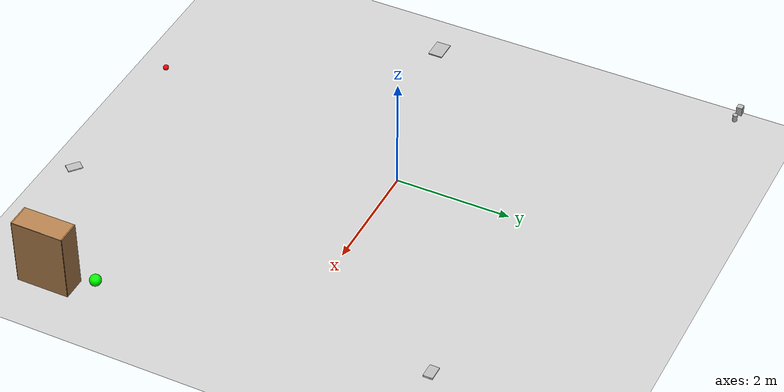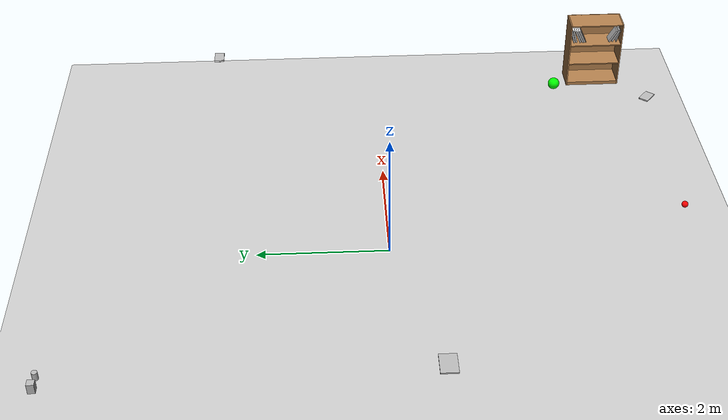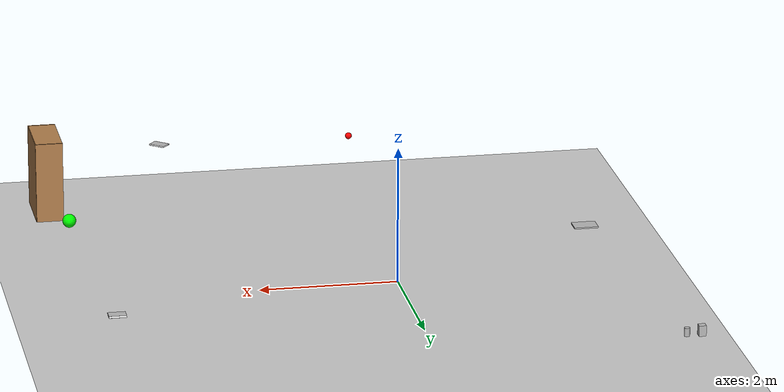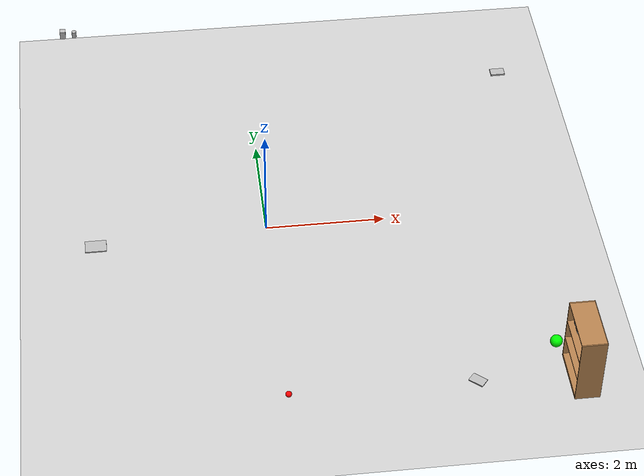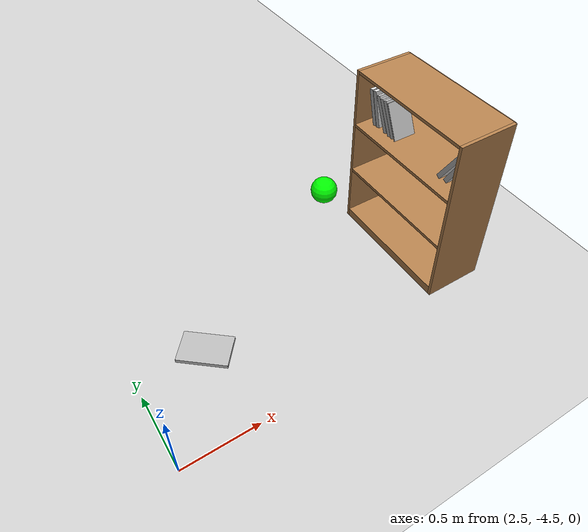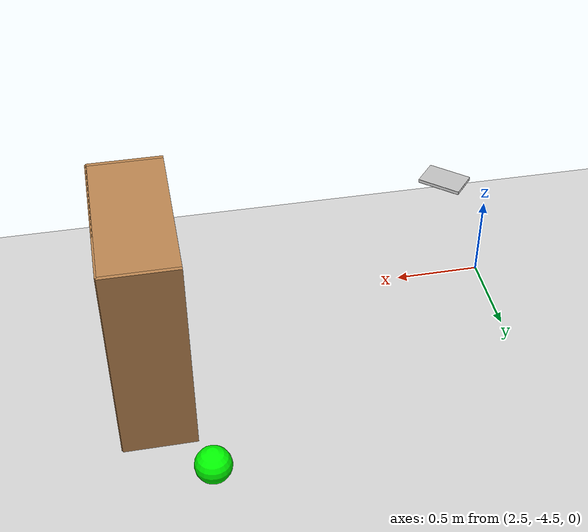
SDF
<sdf version="1.7">
 <world name="default">
  <light name="sun" type="directional">
   <pose>0 0 10 0 -0 0</pose>
   <diffuse>0.8 0.8 0.8 1</diffuse>
   <specular>0.1 0.1 0.1 1</specular>
   <attenuation>
    <range>1000</range>
    <constant>0.9</constant>
    <linear>0.01</linear>
    <quadratic>0.001</quadratic>
   </attenuation>
   <direction>-0.5 0.5 -1</direction>
   <spot><inner_angle>0</inner_angle><outer_angle>0</outer_angle><falloff>0</falloff></spot>
  </light>
  <model name="ground_plane">
   <static>1</static>
   <link name="link">
    <collision name="collision">
     <geometry><plane><normal>0 0 1</normal><size>100 100</size></plane></geometry>
     <surface><friction><ode><mu>100</mu><mu2>50</mu2></ode></friction></surface>
    </collision>
    <visual name="visual">
     <cast_shadows>0</cast_shadows>
     <geometry><plane><normal>0 0 1</normal><size>100 100</size></plane></geometry>
     <material>
      <script><uri>file://media/materials/scripts/gazebo.material</uri><name>Gazebo/Grey</name></script>
     </material>
    </visual>
   </link>
  </model>
  <gravity>0 0 -9.8</gravity>
  <magnetic_field>6e-06 2.3e-05 -4.2e-05</magnetic_field>
  <atmosphere type="adiabatic"/>
  <physics name="default_physics" default="0" type="ode">
   <max_step_size>0.001</max_step_size>
   <real_time_factor>1</real_time_factor>
   <real_time_update_rate>1000</real_time_update_rate>
  </physics>
  <scene><ambient>0.4 0.4 0.4 1</ambient><background>0.7 0.7 0.7 1</background><shadows>1</shadows></scene>
  <spherical_coordinates>
   <surface_model>EARTH_WGS84</surface_model>
   <latitude_deg>0</latitude_deg>
   <longitude_deg>0</longitude_deg>
   <elevation>0</elevation>
   <heading_deg>0</heading_deg>
  </spherical_coordinates>
  <model name="bookshelf">
   <static>1</static>
   <link name="link">
    <inertial><mass>1</mass></inertial>
    <collision name="back">
     <pose>0 0.005 0.6 0 -0 0</pose>
     <geometry><box><size>0.9 0.01 1.2</size></box></geometry>
    </collision>
    <visual name="visual1">
     <pose>0 0.005 0.6 0 -0 0</pose>
     <geometry><box><size>0.9 0.01 1.2</size></box></geometry>
     <material>
      <script><uri>file://media/materials/scripts/gazebo.material</uri><name>Gazebo/Wood</name></script>
     </material>
    </visual>
    <collision name="left_side">
     <pose>0.45 -0.195 0.6 0 -0 0</pose>
     <geometry><box><size>0.02 0.4 1.2</size></box></geometry>
    </collision>
    <visual name="visual2">
     <pose>0.45 -0.195 0.6 0 -0 0</pose>
     <geometry><box><size>0.02 0.4 1.2</size></box></geometry>
     <material>
      <script><uri>file://media/materials/scripts/gazebo.material</uri><name>Gazebo/Wood</name></script>
     </material>
    </visual>
    <collision name="right_side">
     <pose>-0.45 -0.195 0.6 0 -0 0</pose>
     <geometry><box><size>0.02 0.4 1.2</size></box></geometry>
    </collision>
    <visual name="visual3">
     <pose>-0.45 -0.195 0.6 0 -0 0</pose>
     <geometry><box><size>0.02 0.4 1.2</size></box></geometry>
     <material>
      <script><uri>file://media/materials/scripts/gazebo.material</uri><name>Gazebo/Wood</name></script>
     </material>
    </visual>
    <collision name="bottom">
     <pose>0 -0.195 0.03 0 -0 0</pose>
     <geometry><box><size>0.88 0.4 0.06</size></box></geometry>
    </collision>
    <visual name="visual4">
     <pose>0 -0.195 0.03 0 -0 0</pose>
     <geometry><box><size>0.88 0.4 0.06</size></box></geometry>
     <material>
      <script><uri>file://media/materials/scripts/gazebo.material</uri><name>Gazebo/Wood</name></script>
     </material>
    </visual>
    <collision name="top">
     <pose>0 -0.195 1.19 0 -0 0</pose>
     <geometry><box><size>0.88 0.4 0.02</size></box></geometry>
    </collision>
    <visual name="visual5">
     <pose>0 -0.195 1.19 0 -0 0</pose>
     <geometry><box><size>0.88 0.4 0.02</size></box></geometry>
     <material>
      <script><uri>file://media/materials/scripts/gazebo.material</uri><name>Gazebo/Wood</name></script>
     </material>
    </visual>
    <collision name="low_shelf">
     <pose>0 -0.195 0.43 0 -0 0</pose>
     <geometry><box><size>0.88 0.4 0.02</size></box></geometry>
    </collision>
    <visual name="visual6">
     <pose>0 -0.195 0.43 0 -0 0</pose>
     <geometry><box><size>0.88 0.4 0.02</size></box></geometry>
     <material>
      <script><uri>file://media/materials/scripts/gazebo.material</uri><name>Gazebo/Wood</name></script>
     </material>
    </visual>
    <collision name="high_shelf">
     <pose>0 -0.195 0.8 0 -0 0</pose>
     <geometry><box><size>0.88 0.4 0.02</size></box></geometry>
    </collision>
    <visual name="visual7">
     <pose>0 -0.195 0.8 0 -0 0</pose>
     <geometry><box><size>0.88 0.4 0.02</size></box></geometry>
     <material>
      <script><uri>file://media/materials/scripts/gazebo.material</uri><name>Gazebo/Wood</name></script>
     </material>
    </visual>
   </link>
   <pose>4.75971 -3.85961 0.022492 0 0 -1.57</pose>
  </model>
  <model name="book_10">
   <link name="cover">
    <pose>0 -0.000108 0.015405 0 -0 0</pose>
    <visual name="visual">
     <geometry><box><size>0.245 0.16 0.03</size></box></geometry>
     <material>
      <script>
       <uri>model://book_10/materials/scripts</uri>
       <uri>model://book_10/materials/textures</uri>
       <name>book_10</name>
      </script>
     </material>
    </visual>
    <collision name="collision"><geometry><box><size>0.245 0.16 0.03</size></box></geometry></collision>
   </link>
   <link name="page">
    <pose>0 0.000608 0.015405 0 -0 0</pose>
    <visual name="visual">
     <geometry><box><size>0.24502 0.15862 0.028</size></box></geometry>
     <material>
      <lighting>1</lighting>
      <ambient>1 1 1 1</ambient>
      <diffuse>1 1 1 1</diffuse>
      <specular>0.01 0.01 0.01 1</specular>
      <emissive>0 0 0 1</emissive>
      <shader type="vertex"><normal_map>__default__</normal_map></shader>
     </material>
    </visual>
    <collision name="collision"><geometry><box><size>0.245 0.16 0.03</size></box></geometry></collision>
   </link>
   <static>1</static>
   <pose>4.53805 -3.48289 0.958324 3.13855 -1.30602 1.57134</pose>
  </model>
  <model name="book_1">
   <link name="cover">
    <pose>0 -0.000108 0.015405 0 -0 0</pose>
    <visual name="visual">
     <geometry><box><size>0.245 0.16 0.03</size></box></geometry>
     <material>
      <script>
       <uri>model://book_1/materials/scripts</uri>
       <uri>model://book_1/materials/textures</uri>
       <name>book_1</name>
      </script>
     </material>
    </visual>
    <collision name="collision"><geometry><box><size>0.245 0.16 0.03</size></box></geometry></collision>
   </link>
   <link name="page">
    <pose>0 0.000608 0.015405 0 -0 0</pose>
    <visual name="visual">
     <geometry><box><size>0.24502 0.15862 0.028</size></box></geometry>
     <material>
      <lighting>1</lighting>
      <ambient>1 1 1 1</ambient>
      <diffuse>1 1 1 1</diffuse>
      <specular>0.01 0.01 0.01 1</specular>
      <emissive>0 0 0 1</emissive>
      <shader type="vertex"><normal_map>__default__</normal_map></shader>
     </material>
    </visual>
    <collision name="collision"><geometry><box><size>0.245 0.16 0.03</size></box></geometry></collision>
   </link>
   <static>1</static>
   <pose>4.53796 -3.57288 0.95783 3.13964 -1.15052 1.57019</pose>
  </model>
  <model name="book_12">
   <link name="cover">
    <pose>0 -0.000108 0.015405 0 -0 0</pose>
    <visual name="visual">
     <geometry><box><size>0.245 0.16 0.03</size></box></geometry>
     <material>
      <script>
       <uri>model://book_12/materials/scripts</uri>
       <uri>model://book_12/materials/textures</uri>
       <name>book_12</name>
      </script>
     </material>
    </visual>
    <collision name="collision"><geometry><box><size>0.245 0.16 0.03</size></box></geometry></collision>
   </link>
   <link name="page">
    <pose>0 0.000608 0.015405 0 -0 0</pose>
    <visual name="visual">
     <geometry><box><size>0.24502 0.15862 0.028</size></box></geometry>
     <material>
      <lighting>1</lighting>
      <ambient>1 1 1 1</ambient>
      <diffuse>1 1 1 1</diffuse>
      <specular>0.01 0.01 0.01 1</specular>
      <emissive>0 0 0 1</emissive>
      <shader type="vertex"><normal_map>__default__</normal_map></shader>
     </material>
    </visual>
    <collision name="collision"><geometry><box><size>0.245 0.16 0.03</size></box></geometry></collision>
   </link>
   <static>1</static>
   <pose>4.53794 -3.60986 0.955818 3.13975 -1.123 1.57007</pose>
  </model>
  <model name="book_14">
   <link name="cover">
    <pose>0 -0.000108 0.015405 0 -0 0</pose>
    <visual name="visual">
     <geometry><box><size>0.245 0.16 0.03</size></box></geometry>
     <material>
      <script>
       <uri>model://book_14/materials/scripts</uri>
       <uri>model://book_14/materials/textures</uri>
       <name>book_14</name>
      </script>
     </material>
    </visual>
    <collision name="collision"><geometry><box><size>0.245 0.16 0.03</size></box></geometry></collision>
   </link>
   <link name="page">
    <pose>0 0.000608 0.015405 0 -0 0</pose>
    <visual name="visual">
     <geometry><box><size>0.24502 0.15862 0.028</size></box></geometry>
     <material>
      <lighting>1</lighting>
      <ambient>1 1 1 1</ambient>
      <diffuse>1 1 1 1</diffuse>
      <specular>0.01 0.01 0.01 1</specular>
      <emissive>0 0 0 1</emissive>
      <shader type="vertex"><normal_map>__default__</normal_map></shader>
     </material>
    </visual>
    <collision name="collision"><geometry><box><size>0.245 0.16 0.03</size></box></geometry></collision>
   </link>
   <static>1</static>
   <pose>4.53795 -3.51692 0.962229 3.13848 -1.31226 1.57142</pose>
  </model>
  <model name="book_17">
   <link name="cover">
    <pose>0 -0.000108 0.015405 0 -0 0</pose>
    <visual name="visual">
     <geometry><box><size>0.245 0.16 0.03</size></box></geometry>
     <material>
      <script>
       <uri>model://book_17/materials/scripts</uri>
       <uri>model://book_17/materials/textures</uri>
       <name>book_17</name>
      </script>
     </material>
    </visual>
    <collision name="collision"><geometry><box><size>0.245 0.16 0.03</size></box></geometry></collision>
   </link>
   <link name="page">
    <pose>0 0.000608 0.015405 0 -0 0</pose>
    <visual name="visual">
     <geometry><box><size>0.24502 0.15862 0.028</size></box></geometry>
     <material>
      <lighting>1</lighting>
      <ambient>1 1 1 1</ambient>
      <diffuse>1 1 1 1</diffuse>
      <specular>0.01 0.01 0.01 1</specular>
      <emissive>0 0 0 1</emissive>
      <shader type="vertex"><normal_map>__default__</normal_map></shader>
     </material>
    </visual>
    <collision name="collision"><geometry><box><size>0.245 0.16 0.03</size></box></geometry></collision>
   </link>
   <static>1</static>
   <pose>4.53801 -3.64141 0.957888 3.13972 -1.13115 1.5701</pose>
  </model>
  <model name="book_8">
   <link name="cover">
    <pose>0 -0.000108 0.005 0 -0 0</pose>
    <visual name="visual">
     <geometry><box><size>0.245 0.16 0.01</size></box></geometry>
     <material>
      <script>
       <uri>model://book_8/materials/scripts</uri>
       <uri>model://book_8/materials/textures</uri>
       <name>book_8</name>
      </script>
     </material>
    </visual>
    <collision name="collision"><geometry><box><size>0.245 0.16 0.01</size></box></geometry></collision>
   </link>
   <link name="page">
    <pose>0 0.000608 0.005 0 -0 0</pose>
    <visual name="visual">
     <geometry><box><size>0.24502 0.15862 0.008</size></box></geometry>
     <material>
      <lighting>1</lighting>
      <ambient>1 1 1 1</ambient>
      <diffuse>1 1 1 1</diffuse>
      <specular>0.01 0.01 0.01 1</specular>
      <emissive>0 0 0 1</emissive>
      <shader type="vertex"><normal_map>__default__</normal_map></shader>
     </material>
    </visual>
    <collision name="collision"><geometry><box><size>0.245 0.16 0.008</size></box></geometry></collision>
   </link>
   <static>1</static>
   <pose>4.5374 -4.26975 0.9372 0.003027 -1.30463 -1.57611</pose>
  </model>
  <model name="book_9">
   <link name="cover">
    <pose>0 -0.000108 0.005 0 -0 0</pose>
    <visual name="visual">
     <geometry><box><size>0.245 0.16 0.01</size></box></geometry>
     <material>
      <script>
       <uri>model://book_9/materials/scripts</uri>
       <uri>model://book_9/materials/textures</uri>
       <name>book_9</name>
      </script>
     </material>
    </visual>
    <collision name="collision"><geometry><box><size>0.245 0.16 0.01</size></box></geometry></collision>
   </link>
   <link name="page">
    <pose>0 0.000608 0.005 0 -0 0</pose>
    <visual name="visual">
     <geometry><box><size>0.24502 0.15862 0.008</size></box></geometry>
     <material>
      <lighting>1</lighting>
      <ambient>1 1 1 1</ambient>
      <diffuse>1 1 1 1</diffuse>
      <specular>0.01 0.01 0.01 1</specular>
      <emissive>0 0 0 1</emissive>
      <shader type="vertex"><normal_map>__default__</normal_map></shader>
     </material>
    </visual>
    <collision name="collision"><geometry><box><size>0.245 0.16 0.008</size></box></geometry></collision>
   </link>
   <static>1</static>
   <pose>4.53808 -3.65715 0.949304 3.13971 -1.13441 1.57011</pose>
  </model>
  <model name="book_18">
   <link name="cover">
    <pose>0 -0.000108 0.015405 0 -0 0</pose>
    <visual name="visual">
     <geometry><box><size>0.245 0.16 0.03</size></box></geometry>
     <material>
      <script>
       <uri>model://book_18/materials/scripts</uri>
       <uri>model://book_18/materials/textures</uri>
       <name>book_18</name>
      </script>
     </material>
    </visual>
    <collision name="collision"><geometry><box><size>0.245 0.16 0.03</size></box></geometry></collision>
   </link>
   <link name="page">
    <pose>0 0.000608 0.015405 0 -0 0</pose>
    <visual name="visual">
     <geometry><box><size>0.24502 0.15862 0.028</size></box></geometry>
     <material>
      <lighting>1</lighting>
      <ambient>1 1 1 1</ambient>
      <diffuse>1 1 1 1</diffuse>
      <specular>0.01 0.01 0.01 1</specular>
      <emissive>0 0 0 1</emissive>
      <shader type="vertex"><normal_map>__default__</normal_map></shader>
     </material>
    </visual>
    <collision name="collision"><geometry><box><size>0.245 0.16 0.03</size></box></geometry></collision>
   </link>
   <static>1</static>
   <pose>4.54387 -4.23299 0.940395 0.001746 -1.09719 -1.57474</pose>
  </model>
  <model name="book_16">
   <link name="cover">
    <pose>0 -0.000108 0.015405 0 -0 0</pose>
    <visual name="visual">
     <geometry><box><size>0.245 0.16 0.03</size></box></geometry>
     <material>
      <script>
       <uri>model://book_16/materials/scripts</uri>
       <uri>model://book_16/materials/textures</uri>
       <name>book_16</name>
      </script>
     </material>
    </visual>
    <collision name="collision"><geometry><box><size>0.245 0.16 0.03</size></box></geometry></collision>
   </link>
   <link name="page">
    <pose>0 0.000608 0.015405 0 -0 0</pose>
    <visual name="visual">
     <geometry><box><size>0.24502 0.15862 0.028</size></box></geometry>
     <material>
      <lighting>1</lighting>
      <ambient>1 1 1 1</ambient>
      <diffuse>1 1 1 1</diffuse>
      <specular>0.01 0.01 0.01 1</specular>
      <emissive>0 0 0 1</emissive>
      <shader type="vertex"><normal_map>__default__</normal_map></shader>
     </material>
    </visual>
    <collision name="collision"><geometry><box><size>0.245 0.16 0.03</size></box></geometry></collision>
   </link>
   <static>1</static>
   <pose>4.5372 -4.18502 0.937568 0.001602 -1.05077 -1.57458</pose>
  </model>
  <model name="newspaper_2">
   <link name="link_0">
    <visual name="visual">
     <geometry><box><size>0.35 0.25 0.02</size></box></geometry>
     <material>
      <script>
       <uri>model://newspaper_2/materials/scripts</uri>
       <uri>model://newspaper_2/materials/textures</uri>
       <name>newspaper_2</name>
      </script>
     </material>
    </visual>
    <collision name="collision"><geometry><box><size>0.35 0.25 0.02</size></box></geometry></collision>
   </link>
   <static>1</static>
   <pose>-2.85978 -0.607971 0.468138 0 -0 0</pose>
  </model>
  <model name="book_3">
   <link name="cover">
    <pose>0 -0.000108 0.01 0 -0 0</pose>
    <visual name="visual">
     <geometry><box><size>0.245 0.16 0.02</size></box></geometry>
     <material>
      <script>
       <uri>model://book_3/materials/scripts</uri>
       <uri>model://book_3/materials/textures</uri>
       <name>book_3</name>
      </script>
     </material>
    </visual>
    <collision name="collision"><geometry><box><size>0.245 0.16 0.02</size></box></geometry></collision>
   </link>
   <link name="page">
    <pose>0 0.000608 0.01 0 -0 0</pose>
    <visual name="visual">
     <geometry><box><size>0.24502 0.15862 0.018</size></box></geometry>
     <material>
      <lighting>1</lighting>
      <ambient>1 1 1 1</ambient>
      <diffuse>1 1 1 1</diffuse>
      <specular>0.01 0.01 0.01 1</specular>
      <emissive>0 0 0 1</emissive>
      <shader type="vertex"><normal_map>__default__</normal_map></shader>
     </material>
    </visual>
    <collision name="collision"><geometry><box><size>0.245 0.16 0.018</size></box></geometry></collision>
   </link>
   <static>1</static>
   <pose>2.79077 -4.41775 0.767819 0 0 -0.700697</pose>
  </model>
  <model name="book_19">
   <link name="cover">
    <pose>0 -0.000108 0.015405 0 -0 0</pose>
    <visual name="visual">
     <geometry><box><size>0.245 0.16 0.03</size></box></geometry>
     <material>
      <script>
       <uri>model://book_19/materials/scripts</uri>
       <uri>model://book_19/materials/textures</uri>
       <name>book_19</name>
      </script>
     </material>
    </visual>
    <collision name="collision"><geometry><box><size>0.245 0.16 0.03</size></box></geometry></collision>
   </link>
   <link name="page">
    <pose>0 0.000608 0.015405 0 -0 0</pose>
    <visual name="visual">
     <geometry><box><size>0.24502 0.15862 0.028</size></box></geometry>
     <material>
      <lighting>1</lighting>
      <ambient>1 1 1 1</ambient>
      <diffuse>1 1 1 1</diffuse>
      <specular>0.01 0.01 0.01 1</specular>
      <emissive>0 0 0 1</emissive>
      <shader type="vertex"><normal_map>__default__</normal_map></shader>
     </material>
    </visual>
    <collision name="collision"><geometry><box><size>0.245 0.16 0.03</size></box></geometry></collision>
   </link>
   <static>1</static>
   <pose>4.39835 2.70804 0.766184 0 -0 0</pose>
  </model>
  <model name="tea_box">
   <link name="link">
    <pose>0 0 0.075 0 -0 0</pose>
    <visual name="visual">
     <geometry><box><size>0.1 0.1 0.15</size></box></geometry>
     <material>
      <script>
       <uri>model://tea_box/materials/scripts</uri>
       <uri>model://tea_box/materials/textures</uri>
       <name>tea_pat</name>
      </script>
     </material>
    </visual>
    <collision name="collision"><geometry><box><size>0.1 0.1 0.15</size></box></geometry></collision>
   </link>
   <static>1</static>
   <pose>-3.27945 4.66486 0.699417 0 -0 0</pose>
  </model>
  <model name="coffee_box">
   <link name="link_0">
    <visual name="visual">
     <pose>0 0 0.06 0 -0 0</pose>
     <geometry><cylinder><radius>0.04</radius><length>0.12</length></cylinder></geometry>
     <material>
      <script>
       <uri>model://coffee_box/materials/scripts</uri>
       <uri>model://coffee_box/materials/textures</uri>
       <name>coffee_pat</name>
      </script>
     </material>
    </visual>
    <collision name="collision">
     <geometry><cylinder><radius>0.04</radius><length>0.12</length></cylinder></geometry>
    </collision>
   </link>
   <static>1</static>
   <pose>-3.07493 4.65525 0.698978 0 -0 0</pose>
  </model>
  <model name="sphere_r">
   <link name="link_1">
    <pose>0 0 0.1 0 -0 0</pose>
    <inertial>
     <mass>0.115461</mass>
     <inertia>
      <ixx>0.000109538</ixx>
      <ixy>0</ixy>
      <ixz>0</ixz>
      <iyy>0.000109538</iyy>
      <iyz>0</iyz>
      <izz>0.000109538</izz>
     </inertia>
    </inertial>
    <visual name="visual">
     <geometry><sphere><radius>0.0487006</radius></sphere></geometry>
     <material>
      <lighting>1</lighting>
      <script><uri>file://media/materials/scripts/gazebo.material</uri><name>Gazebo/Grey</name></script>
      <ambient>1 0 0 1</ambient>
      <diffuse>1 0 0 1</diffuse>
      <specular>0 0 0 1</specular>
      <emissive>0 0 0 1</emissive>
      <shader type="vertex"><normal_map>__default__</normal_map></shader>
     </material>
    </visual>
    <collision name="collision">
     <geometry><sphere><radius>0.048701</radius></sphere></geometry>
     <surface>
      <friction>
       <ode><mu>1</mu><mu2>1</mu2><fdir1>0 0 0</fdir1><slip1>0</slip1><slip2>0</slip2></ode>
       <torsional>
        <coefficient>1</coefficient>
        <patch_radius>0</patch_radius>
        <surface_radius>0</surface_radius>
        <use_patch_radius>1</use_patch_radius>
        <ode><slip>0</slip></ode>
       </torsional>
      </friction>
      <bounce><restitution_coefficient>0</restitution_coefficient><threshold>1e+06</threshold></bounce>
      <contact>
       <collide_without_contact>0</collide_without_contact>
       <collide_without_contact_bitmask>1</collide_without_contact_bitmask>
       <collide_bitmask>1</collide_bitmask>
       <ode>
        <soft_cfm>0</soft_cfm>
        <soft_erp>0.2</soft_erp>
        <kp>1e+13</kp>
        <kd>1</kd>
        <max_vel>0.01</max_vel>
        <min_depth>0</min_depth>
       </ode>
       <bullet>
        <split_impulse>1</split_impulse>
        <split_impulse_penetration_threshold>-0.01</split_impulse_penetration_threshold>
        <soft_cfm>0</soft_cfm>
        <soft_erp>0.2</soft_erp>
        <kp>1e+13</kp>
        <kd>1</kd>
       </bullet>
      </contact>
     </surface>
    </collision>
   </link>
   <static>1</static>
   <pose>-0.072129 -4.36531 0.661277 0 -0 0</pose>
  </model>
  <model name="sphere_g">
   <link name="link_1">
    <pose>0 0 0.1 0 -0 0</pose>
    <inertial>
     <mass>1</mass>
     <inertia><ixx>0.1</ixx><ixy>0</ixy><ixz>0</ixz><iyy>0.1</iyy><iyz>0</iyz><izz>0.1</izz></inertia>
    </inertial>
    <visual name="visual">
     <geometry><sphere><radius>0.1</radius></sphere></geometry>
     <material>
      <lighting>1</lighting>
      <script><uri>file://media/materials/scripts/gazebo.material</uri><name>Gazebo/Grey</name></script>
      <ambient>0 1 0 1</ambient>
      <diffuse>0 1 0 1</diffuse>
      <specular>0 0 0 1</specular>
      <emissive>0 0 0 1</emissive>
      <shader type="vertex"><normal_map>__default__</normal_map></shader>
     </material>
    </visual>
    <collision name="collision">
     <geometry><sphere><radius>0.1</radius></sphere></geometry>
     <surface>
      <friction>
       <ode><mu>1</mu><mu2>1</mu2><fdir1>0 0 0</fdir1><slip1>0</slip1><slip2>0</slip2></ode>
       <torsional>
        <coefficient>1</coefficient>
        <patch_radius>0</patch_radius>
        <surface_radius>0</surface_radius>
        <use_patch_radius>1</use_patch_radius>
        <ode><slip>0</slip></ode>
       </torsional>
      </friction>
      <bounce><restitution_coefficient>0</restitution_coefficient><threshold>1e+06</threshold></bounce>
      <contact>
       <collide_without_contact>0</collide_without_contact>
       <collide_without_contact_bitmask>1</collide_without_contact_bitmask>
       <collide_bitmask>1</collide_bitmask>
       <ode>
        <soft_cfm>0</soft_cfm>
        <soft_erp>0.2</soft_erp>
        <kp>1e+13</kp>
        <kd>1</kd>
        <max_vel>0.01</max_vel>
        <min_depth>0</min_depth>
       </ode>
       <bullet>
        <split_impulse>1</split_impulse>
        <split_impulse_penetration_threshold>-0.01</split_impulse_penetration_threshold>
        <soft_cfm>0</soft_cfm>
        <soft_erp>0.2</soft_erp>
        <kp>1e+13</kp>
        <kd>1</kd>
       </bullet>
      </contact>
     </surface>
    </collision>
   </link>
   <static>1</static>
   <pose>4.31358 -3.16265 0 0 -0 0</pose>
  </model>
 </world>
</sdf>
